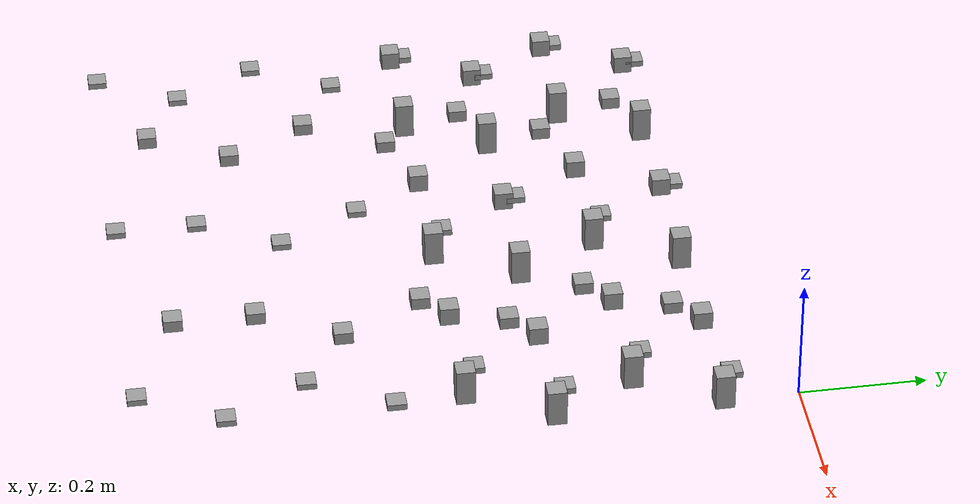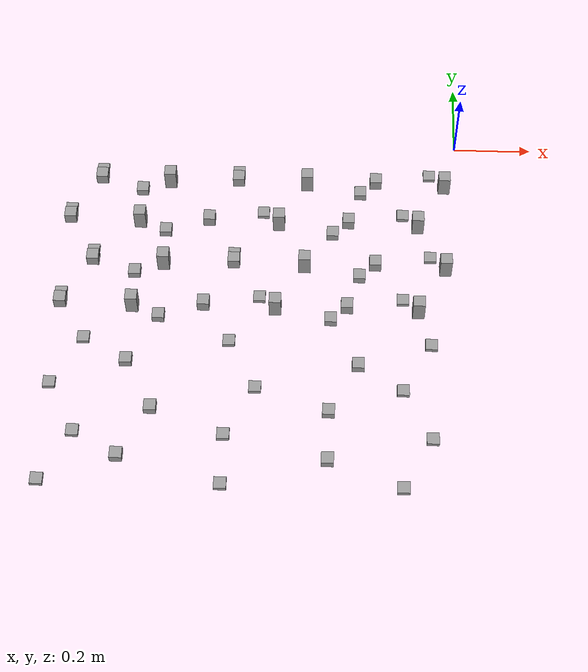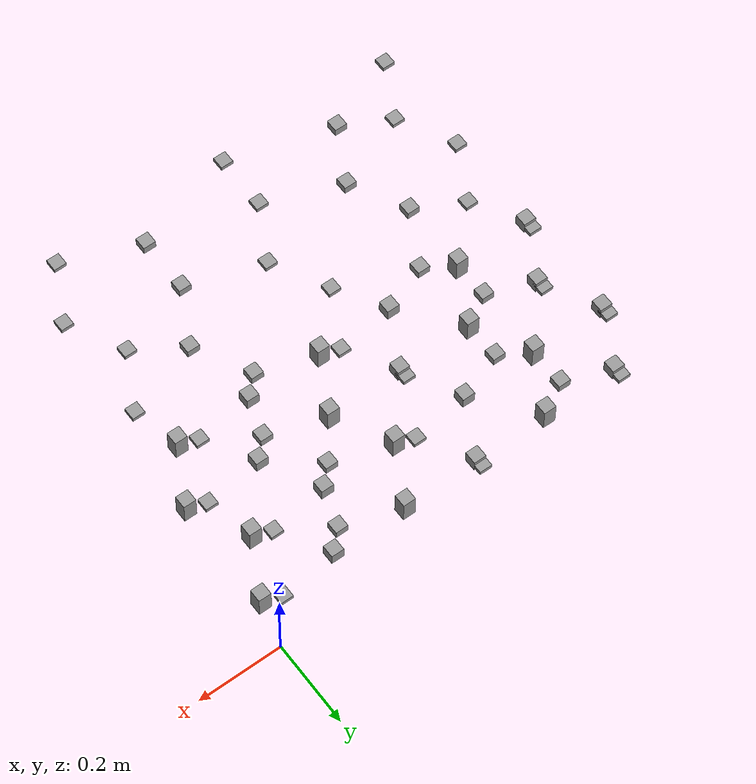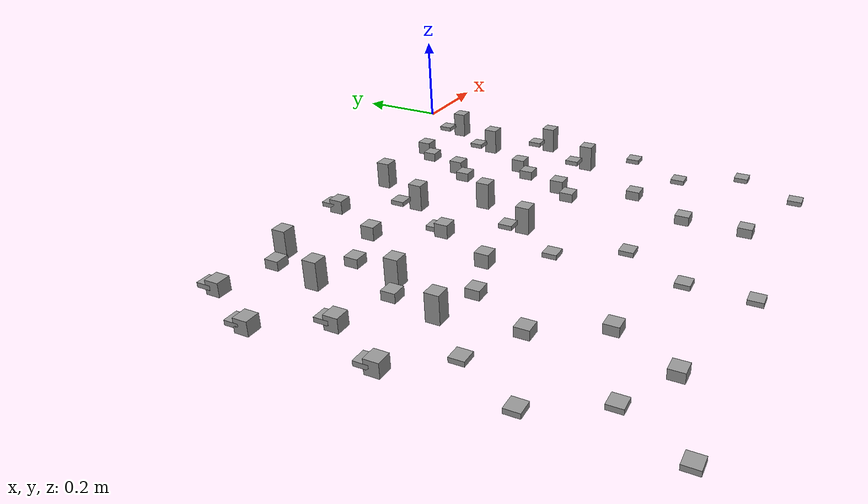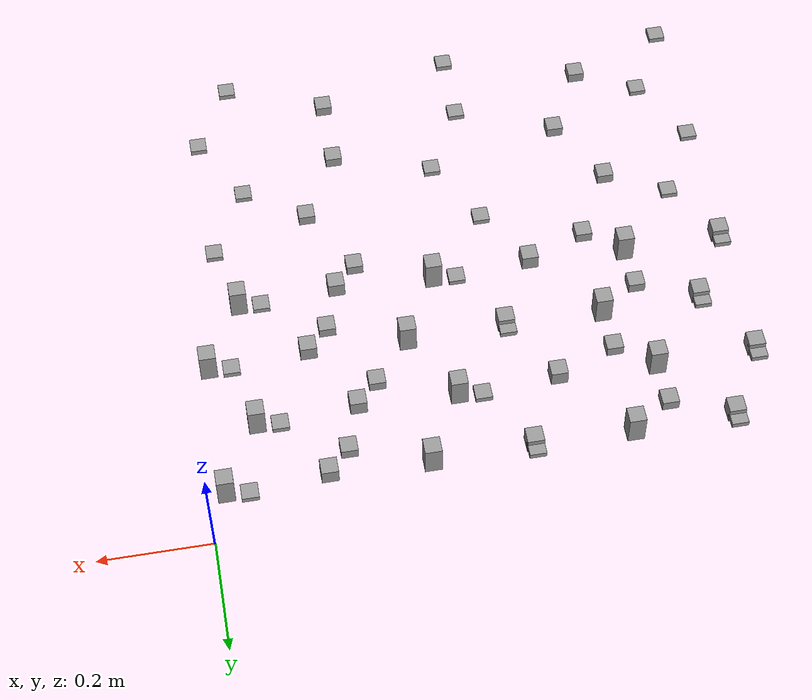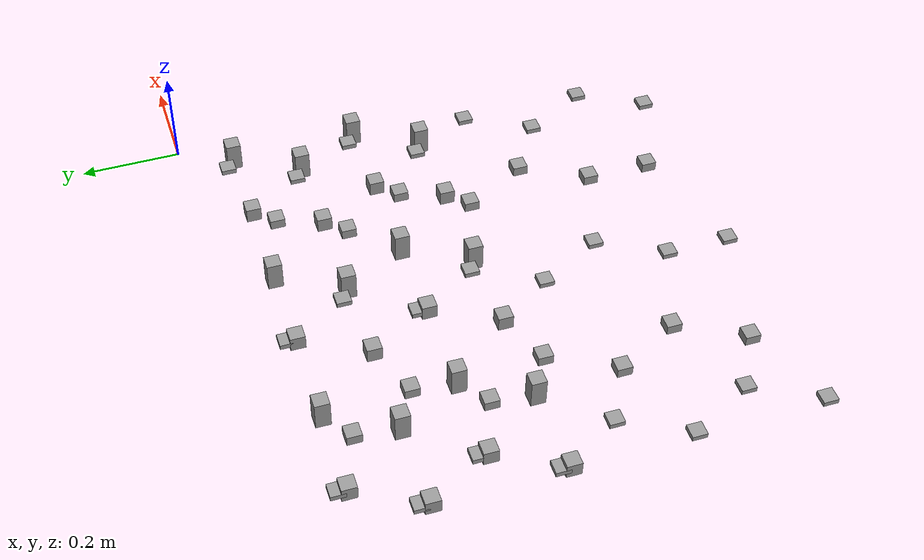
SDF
<sdf version="1.5">
 <world name="default">
  <model name="unit_box_0">
   <pose>-1 -0.5 0 0 0 0</pose>
   <link name="link">
    <inertial>
     <mass>1</mass>
     <inertia><ixx>0</ixx><ixy>0</ixy><ixz>0</ixz><iyy>0</iyy><iyz>0</iyz><izz>0</izz></inertia>
    </inertial>
    <collision name="collision"><geometry><box><size>0.03 0.03 0.03</size></box></geometry></collision>
    <visual name="visual">
     <geometry><box><size>0.03 0.03 0.03</size></box></geometry>
     <material>
      <script><name>Gazebo/Grey</name><uri>file://media/materials/scripts/gazebo.material</uri></script>
     </material>
    </visual>
   </link>
  </model>
  <model name="unit_box_1">
   <pose>-0.93 -0.37 0 0 0 0</pose>
   <link name="link">
    <inertial>
     <mass>1</mass>
     <inertia><ixx>0</ixx><ixy>0</ixy><ixz>0</ixz><iyy>0</iyy><iyz>0</iyz><izz>0</izz></inertia>
    </inertial>
    <collision name="collision"><geometry><box><size>0.03 0.03 0.03</size></box></geometry></collision>
    <visual name="visual">
     <geometry><box><size>0.03 0.03 0.03</size></box></geometry>
     <material>
      <script><name>Gazebo/Grey</name><uri>file://media/materials/scripts/gazebo.material</uri></script>
     </material>
    </visual>
   </link>
  </model>
  <model name="unit_box_2">
   <pose>-1 -0.24 0 0 0 0</pose>
   <link name="link">
    <inertial>
     <mass>1</mass>
     <inertia><ixx>0</ixx><ixy>0</ixy><ixz>0</ixz><iyy>0</iyy><iyz>0</iyz><izz>0</izz></inertia>
    </inertial>
    <collision name="collision"><geometry><box><size>0.03 0.03 0.03</size></box></geometry></collision>
    <visual name="visual">
     <geometry><box><size>0.03 0.03 0.03</size></box></geometry>
     <material>
      <script><name>Gazebo/Grey</name><uri>file://media/materials/scripts/gazebo.material</uri></script>
     </material>
    </visual>
   </link>
  </model>
  <model name="unit_box_3">
   <pose>-0.93 -0.11 0 0 0 0</pose>
   <link name="link">
    <inertial>
     <mass>1</mass>
     <inertia><ixx>0</ixx><ixy>0</ixy><ixz>0</ixz><iyy>0</iyy><iyz>0</iyz><izz>0</izz></inertia>
    </inertial>
    <collision name="collision"><geometry><box><size>0.03 0.03 0.03</size></box></geometry></collision>
    <visual name="visual">
     <geometry><box><size>0.03 0.03 0.03</size></box></geometry>
     <material>
      <script><name>Gazebo/Grey</name><uri>file://media/materials/scripts/gazebo.material</uri></script>
     </material>
    </visual>
   </link>
  </model>
  <model name="unit_box_8">
   <pose>-0.82 -0.5 0 0 0 0</pose>
   <link name="link">
    <inertial>
     <mass>1</mass>
     <inertia><ixx>0</ixx><ixy>0</ixy><ixz>0</ixz><iyy>0</iyy><iyz>0</iyz><izz>0</izz></inertia>
    </inertial>
    <collision name="collision"><geometry><box><size>0.03 0.03 0.06</size></box></geometry></collision>
    <visual name="visual">
     <geometry><box><size>0.03 0.03 0.06</size></box></geometry>
     <material>
      <script><name>Gazebo/Grey</name><uri>file://media/materials/scripts/gazebo.material</uri></script>
     </material>
    </visual>
   </link>
  </model>
  <model name="unit_box_9">
   <pose>-0.75 -0.37 0 0 0 0</pose>
   <link name="link">
    <inertial>
     <mass>1</mass>
     <inertia><ixx>0</ixx><ixy>0</ixy><ixz>0</ixz><iyy>0</iyy><iyz>0</iyz><izz>0</izz></inertia>
    </inertial>
    <collision name="collision"><geometry><box><size>0.03 0.03 0.06</size></box></geometry></collision>
    <visual name="visual">
     <geometry><box><size>0.03 0.03 0.06</size></box></geometry>
     <material>
      <script><name>Gazebo/Grey</name><uri>file://media/materials/scripts/gazebo.material</uri></script>
     </material>
    </visual>
   </link>
  </model>
  <model name="unit_box_10">
   <pose>-0.82 -0.24 0 0 0 0</pose>
   <link name="link">
    <inertial>
     <mass>1</mass>
     <inertia><ixx>0</ixx><ixy>0</ixy><ixz>0</ixz><iyy>0</iyy><iyz>0</iyz><izz>0</izz></inertia>
    </inertial>
    <collision name="collision"><geometry><box><size>0.03 0.03 0.06</size></box></geometry></collision>
    <visual name="visual">
     <geometry><box><size>0.03 0.03 0.06</size></box></geometry>
     <material>
      <script><name>Gazebo/Grey</name><uri>file://media/materials/scripts/gazebo.material</uri></script>
     </material>
    </visual>
   </link>
  </model>
  <model name="unit_box_11">
   <pose>-0.75 -0.11 0 0 0 0</pose>
   <link name="link">
    <inertial>
     <mass>1</mass>
     <inertia><ixx>0</ixx><ixy>0</ixy><ixz>0</ixz><iyy>0</iyy><iyz>0</iyz><izz>0</izz></inertia>
    </inertial>
    <collision name="collision"><geometry><box><size>0.03 0.03 0.06</size></box></geometry></collision>
    <visual name="visual">
     <geometry><box><size>0.03 0.03 0.06</size></box></geometry>
     <material>
      <script><name>Gazebo/Grey</name><uri>file://media/materials/scripts/gazebo.material</uri></script>
     </material>
    </visual>
   </link>
  </model>
  <model name="unit_box_16">
   <pose>-0.64 -0.5 0 0 0 0</pose>
   <link name="link">
    <inertial>
     <mass>1</mass>
     <inertia><ixx>0</ixx><ixy>0</ixy><ixz>0</ixz><iyy>0</iyy><iyz>0</iyz><izz>0</izz></inertia>
    </inertial>
    <collision name="collision"><geometry><box><size>0.03 0.03 0.03</size></box></geometry></collision>
    <visual name="visual">
     <geometry><box><size>0.03 0.03 0.03</size></box></geometry>
     <material>
      <script><name>Gazebo/Grey</name><uri>file://media/materials/scripts/gazebo.material</uri></script>
     </material>
    </visual>
   </link>
  </model>
  <model name="unit_box_17">
   <pose>-0.57 -0.37 0 0 0 0</pose>
   <link name="link">
    <inertial>
     <mass>1</mass>
     <inertia><ixx>0</ixx><ixy>0</ixy><ixz>0</ixz><iyy>0</iyy><iyz>0</iyz><izz>0</izz></inertia>
    </inertial>
    <collision name="collision"><geometry><box><size>0.03 0.03 0.03</size></box></geometry></collision>
    <visual name="visual">
     <geometry><box><size>0.03 0.03 0.03</size></box></geometry>
     <material>
      <script><name>Gazebo/Grey</name><uri>file://media/materials/scripts/gazebo.material</uri></script>
     </material>
    </visual>
   </link>
  </model>
  <model name="unit_box_18">
   <pose>-0.64 -0.24 0 0 0 0</pose>
   <link name="link">
    <inertial>
     <mass>1</mass>
     <inertia><ixx>0</ixx><ixy>0</ixy><ixz>0</ixz><iyy>0</iyy><iyz>0</iyz><izz>0</izz></inertia>
    </inertial>
    <collision name="collision"><geometry><box><size>0.03 0.03 0.03</size></box></geometry></collision>
    <visual name="visual">
     <geometry><box><size>0.03 0.03 0.03</size></box></geometry>
     <material>
      <script><name>Gazebo/Grey</name><uri>file://media/materials/scripts/gazebo.material</uri></script>
     </material>
    </visual>
   </link>
  </model>
  <model name="unit_box_19">
   <pose>-0.57 -0.11 0 0 0 0</pose>
   <link name="link">
    <inertial>
     <mass>1</mass>
     <inertia><ixx>0</ixx><ixy>0</ixy><ixz>0</ixz><iyy>0</iyy><iyz>0</iyz><izz>0</izz></inertia>
    </inertial>
    <collision name="collision"><geometry><box><size>0.03 0.03 0.03</size></box></geometry></collision>
    <visual name="visual">
     <geometry><box><size>0.03 0.03 0.03</size></box></geometry>
     <material>
      <script><name>Gazebo/Grey</name><uri>file://media/materials/scripts/gazebo.material</uri></script>
     </material>
    </visual>
   </link>
  </model>
  <model name="unit_box_24">
   <pose>-0.46 -0.5 0 0 0 0</pose>
   <link name="link">
    <inertial>
     <mass>1</mass>
     <inertia><ixx>0</ixx><ixy>0</ixy><ixz>0</ixz><iyy>0</iyy><iyz>0</iyz><izz>0</izz></inertia>
    </inertial>
    <collision name="collision"><geometry><box><size>0.03 0.03 0.06</size></box></geometry></collision>
    <visual name="visual">
     <geometry><box><size>0.03 0.03 0.06</size></box></geometry>
     <material>
      <script><name>Gazebo/Grey</name><uri>file://media/materials/scripts/gazebo.material</uri></script>
     </material>
    </visual>
   </link>
  </model>
  <model name="unit_box_25">
   <pose>-0.39 -0.37 0 0 0 0</pose>
   <link name="link">
    <inertial>
     <mass>1</mass>
     <inertia><ixx>0</ixx><ixy>0</ixy><ixz>0</ixz><iyy>0</iyy><iyz>0</iyz><izz>0</izz></inertia>
    </inertial>
    <collision name="collision"><geometry><box><size>0.03 0.03 0.06</size></box></geometry></collision>
    <visual name="visual">
     <geometry><box><size>0.03 0.03 0.06</size></box></geometry>
     <material>
      <script><name>Gazebo/Grey</name><uri>file://media/materials/scripts/gazebo.material</uri></script>
     </material>
    </visual>
   </link>
  </model>
  <model name="unit_box_26">
   <pose>-0.46 -0.24 0 0 0 0</pose>
   <link name="link">
    <inertial>
     <mass>1</mass>
     <inertia><ixx>0</ixx><ixy>0</ixy><ixz>0</ixz><iyy>0</iyy><iyz>0</iyz><izz>0</izz></inertia>
    </inertial>
    <collision name="collision"><geometry><box><size>0.03 0.03 0.06</size></box></geometry></collision>
    <visual name="visual">
     <geometry><box><size>0.03 0.03 0.06</size></box></geometry>
     <material>
      <script><name>Gazebo/Grey</name><uri>file://media/materials/scripts/gazebo.material</uri></script>
     </material>
    </visual>
   </link>
  </model>
  <model name="unit_box_27">
   <pose>-0.39 -0.11 0 0 0 0</pose>
   <link name="link">
    <inertial>
     <mass>1</mass>
     <inertia><ixx>0</ixx><ixy>0</ixy><ixz>0</ixz><iyy>0</iyy><iyz>0</iyz><izz>0</izz></inertia>
    </inertial>
    <collision name="collision"><geometry><box><size>0.03 0.03 0.06</size></box></geometry></collision>
    <visual name="visual">
     <geometry><box><size>0.03 0.03 0.06</size></box></geometry>
     <material>
      <script><name>Gazebo/Grey</name><uri>file://media/materials/scripts/gazebo.material</uri></script>
     </material>
    </visual>
   </link>
  </model>
  <model name="unit_box_32">
   <pose>-0.28 -0.5 0 0 0 0</pose>
   <link name="link">
    <inertial>
     <mass>1</mass>
     <inertia><ixx>0</ixx><ixy>0</ixy><ixz>0</ixz><iyy>0</iyy><iyz>0</iyz><izz>0</izz></inertia>
    </inertial>
    <collision name="collision"><geometry><box><size>0.03 0.03 0.03</size></box></geometry></collision>
    <visual name="visual">
     <geometry><box><size>0.03 0.03 0.03</size></box></geometry>
     <material>
      <script><name>Gazebo/Grey</name><uri>file://media/materials/scripts/gazebo.material</uri></script>
     </material>
    </visual>
   </link>
  </model>
  <model name="unit_box_33">
   <pose>-0.21 -0.37 0 0 0 0</pose>
   <link name="link">
    <inertial>
     <mass>1</mass>
     <inertia><ixx>0</ixx><ixy>0</ixy><ixz>0</ixz><iyy>0</iyy><iyz>0</iyz><izz>0</izz></inertia>
    </inertial>
    <collision name="collision"><geometry><box><size>0.03 0.03 0.03</size></box></geometry></collision>
    <visual name="visual">
     <geometry><box><size>0.03 0.03 0.03</size></box></geometry>
     <material>
      <script><name>Gazebo/Grey</name><uri>file://media/materials/scripts/gazebo.material</uri></script>
     </material>
    </visual>
   </link>
  </model>
  <model name="unit_box_34">
   <pose>-0.28 -0.24 0 0 0 0</pose>
   <link name="link">
    <inertial>
     <mass>1</mass>
     <inertia><ixx>0</ixx><ixy>0</ixy><ixz>0</ixz><iyy>0</iyy><iyz>0</iyz><izz>0</izz></inertia>
    </inertial>
    <collision name="collision"><geometry><box><size>0.03 0.03 0.03</size></box></geometry></collision>
    <visual name="visual">
     <geometry><box><size>0.03 0.03 0.03</size></box></geometry>
     <material>
      <script><name>Gazebo/Grey</name><uri>file://media/materials/scripts/gazebo.material</uri></script>
     </material>
    </visual>
   </link>
  </model>
  <model name="unit_box_35">
   <pose>-0.21 -0.11 0 0 0 0</pose>
   <link name="link">
    <inertial>
     <mass>1</mass>
     <inertia><ixx>0</ixx><ixy>0</ixy><ixz>0</ixz><iyy>0</iyy><iyz>0</iyz><izz>0</izz></inertia>
    </inertial>
    <collision name="collision"><geometry><box><size>0.03 0.03 0.03</size></box></geometry></collision>
    <visual name="visual">
     <geometry><box><size>0.03 0.03 0.03</size></box></geometry>
     <material>
      <script><name>Gazebo/Grey</name><uri>file://media/materials/scripts/gazebo.material</uri></script>
     </material>
    </visual>
   </link>
  </model>
  <model name="unit_box_40">
   <pose>-0.0999999999999998 -0.5 0 0 0 0</pose>
   <link name="link">
    <inertial>
     <mass>1</mass>
     <inertia><ixx>0</ixx><ixy>0</ixy><ixz>0</ixz><iyy>0</iyy><iyz>0</iyz><izz>0</izz></inertia>
    </inertial>
    <collision name="collision"><geometry><box><size>0.03 0.03 0.06</size></box></geometry></collision>
    <visual name="visual">
     <geometry><box><size>0.03 0.03 0.06</size></box></geometry>
     <material>
      <script><name>Gazebo/Grey</name><uri>file://media/materials/scripts/gazebo.material</uri></script>
     </material>
    </visual>
   </link>
  </model>
  <model name="unit_box_41">
   <pose>-0.0299999999999998 -0.37 0 0 0 0</pose>
   <link name="link">
    <inertial>
     <mass>1</mass>
     <inertia><ixx>0</ixx><ixy>0</ixy><ixz>0</ixz><iyy>0</iyy><iyz>0</iyz><izz>0</izz></inertia>
    </inertial>
    <collision name="collision"><geometry><box><size>0.03 0.03 0.06</size></box></geometry></collision>
    <visual name="visual">
     <geometry><box><size>0.03 0.03 0.06</size></box></geometry>
     <material>
      <script><name>Gazebo/Grey</name><uri>file://media/materials/scripts/gazebo.material</uri></script>
     </material>
    </visual>
   </link>
  </model>
  <model name="unit_box_42">
   <pose>-0.0999999999999998 -0.24 0 0 0 0</pose>
   <link name="link">
    <inertial>
     <mass>1</mass>
     <inertia><ixx>0</ixx><ixy>0</ixy><ixz>0</ixz><iyy>0</iyy><iyz>0</iyz><izz>0</izz></inertia>
    </inertial>
    <collision name="collision"><geometry><box><size>0.03 0.03 0.06</size></box></geometry></collision>
    <visual name="visual">
     <geometry><box><size>0.03 0.03 0.06</size></box></geometry>
     <material>
      <script><name>Gazebo/Grey</name><uri>file://media/materials/scripts/gazebo.material</uri></script>
     </material>
    </visual>
   </link>
  </model>
  <model name="unit_box_43">
   <pose>-0.0299999999999998 -0.11 0 0 0 0</pose>
   <link name="link">
    <inertial>
     <mass>1</mass>
     <inertia><ixx>0</ixx><ixy>0</ixy><ixz>0</ixz><iyy>0</iyy><iyz>0</iyz><izz>0</izz></inertia>
    </inertial>
    <collision name="collision"><geometry><box><size>0.03 0.03 0.06</size></box></geometry></collision>
    <visual name="visual">
     <geometry><box><size>0.03 0.03 0.06</size></box></geometry>
     <material>
      <script><name>Gazebo/Grey</name><uri>file://media/materials/scripts/gazebo.material</uri></script>
     </material>
    </visual>
   </link>
  </model>
  <model name="unit_box_0">
   <pose>-1 -1 0 0 0 0</pose>
   <link name="link">
    <inertial>
     <mass>1</mass>
     <inertia><ixx>0</ixx><ixy>0</ixy><ixz>0</ixz><iyy>0</iyy><iyz>0</iyz><izz>0</izz></inertia>
    </inertial>
    <collision name="collision"><geometry><box><size>0.03 0.03 0.01</size></box></geometry></collision>
    <visual name="visual">
     <geometry><box><size>0.03 0.03 0.01</size></box></geometry>
     <material>
      <script><name>Gazebo/Grey</name><uri>file://media/materials/scripts/gazebo.material</uri></script>
     </material>
    </visual>
   </link>
  </model>
  <model name="unit_box_1">
   <pose>-0.93 -0.87 0 0 0 0</pose>
   <link name="link">
    <inertial>
     <mass>1</mass>
     <inertia><ixx>0</ixx><ixy>0</ixy><ixz>0</ixz><iyy>0</iyy><iyz>0</iyz><izz>0</izz></inertia>
    </inertial>
    <collision name="collision"><geometry><box><size>0.03 0.03 0.01</size></box></geometry></collision>
    <visual name="visual">
     <geometry><box><size>0.03 0.03 0.01</size></box></geometry>
     <material>
      <script><name>Gazebo/Grey</name><uri>file://media/materials/scripts/gazebo.material</uri></script>
     </material>
    </visual>
   </link>
  </model>
  <model name="unit_box_2">
   <pose>-1 -0.74 0 0 0 0</pose>
   <link name="link">
    <inertial>
     <mass>1</mass>
     <inertia><ixx>0</ixx><ixy>0</ixy><ixz>0</ixz><iyy>0</iyy><iyz>0</iyz><izz>0</izz></inertia>
    </inertial>
    <collision name="collision"><geometry><box><size>0.03 0.03 0.01</size></box></geometry></collision>
    <visual name="visual">
     <geometry><box><size>0.03 0.03 0.01</size></box></geometry>
     <material>
      <script><name>Gazebo/Grey</name><uri>file://media/materials/scripts/gazebo.material</uri></script>
     </material>
    </visual>
   </link>
  </model>
  <model name="unit_box_3">
   <pose>-0.93 -0.61 0 0 0 0</pose>
   <link name="link">
    <inertial>
     <mass>1</mass>
     <inertia><ixx>0</ixx><ixy>0</ixy><ixz>0</ixz><iyy>0</iyy><iyz>0</iyz><izz>0</izz></inertia>
    </inertial>
    <collision name="collision"><geometry><box><size>0.03 0.03 0.01</size></box></geometry></collision>
    <visual name="visual">
     <geometry><box><size>0.03 0.03 0.01</size></box></geometry>
     <material>
      <script><name>Gazebo/Grey</name><uri>file://media/materials/scripts/gazebo.material</uri></script>
     </material>
    </visual>
   </link>
  </model>
  <model name="unit_box_4">
   <pose>-1 -0.48 0 0 0 0</pose>
   <link name="link">
    <inertial>
     <mass>1</mass>
     <inertia><ixx>0</ixx><ixy>0</ixy><ixz>0</ixz><iyy>0</iyy><iyz>0</iyz><izz>0</izz></inertia>
    </inertial>
    <collision name="collision"><geometry><box><size>0.03 0.03 0.01</size></box></geometry></collision>
    <visual name="visual">
     <geometry><box><size>0.03 0.03 0.01</size></box></geometry>
     <material>
      <script><name>Gazebo/Grey</name><uri>file://media/materials/scripts/gazebo.material</uri></script>
     </material>
    </visual>
   </link>
  </model>
  <model name="unit_box_5">
   <pose>-0.93 -0.35 0 0 0 0</pose>
   <link name="link">
    <inertial>
     <mass>1</mass>
     <inertia><ixx>0</ixx><ixy>0</ixy><ixz>0</ixz><iyy>0</iyy><iyz>0</iyz><izz>0</izz></inertia>
    </inertial>
    <collision name="collision"><geometry><box><size>0.03 0.03 0.01</size></box></geometry></collision>
    <visual name="visual">
     <geometry><box><size>0.03 0.03 0.01</size></box></geometry>
     <material>
      <script><name>Gazebo/Grey</name><uri>file://media/materials/scripts/gazebo.material</uri></script>
     </material>
    </visual>
   </link>
  </model>
  <model name="unit_box_6">
   <pose>-1 -0.22 0 0 0 0</pose>
   <link name="link">
    <inertial>
     <mass>1</mass>
     <inertia><ixx>0</ixx><ixy>0</ixy><ixz>0</ixz><iyy>0</iyy><iyz>0</iyz><izz>0</izz></inertia>
    </inertial>
    <collision name="collision"><geometry><box><size>0.03 0.03 0.01</size></box></geometry></collision>
    <visual name="visual">
     <geometry><box><size>0.03 0.03 0.01</size></box></geometry>
     <material>
      <script><name>Gazebo/Grey</name><uri>file://media/materials/scripts/gazebo.material</uri></script>
     </material>
    </visual>
   </link>
  </model>
  <model name="unit_box_7">
   <pose>-0.93 -0.0899999999999999 0 0 0 0</pose>
   <link name="link">
    <inertial>
     <mass>1</mass>
     <inertia><ixx>0</ixx><ixy>0</ixy><ixz>0</ixz><iyy>0</iyy><iyz>0</iyz><izz>0</izz></inertia>
    </inertial>
    <collision name="collision"><geometry><box><size>0.03 0.03 0.01</size></box></geometry></collision>
    <visual name="visual">
     <geometry><box><size>0.03 0.03 0.01</size></box></geometry>
     <material>
      <script><name>Gazebo/Grey</name><uri>file://media/materials/scripts/gazebo.material</uri></script>
     </material>
    </visual>
   </link>
  </model>
  <model name="unit_box_16">
   <pose>-0.82 -0.93 0 0 0 0</pose>
   <link name="link">
    <inertial>
     <mass>1</mass>
     <inertia><ixx>0</ixx><ixy>0</ixy><ixz>0</ixz><iyy>0</iyy><iyz>0</iyz><izz>0</izz></inertia>
    </inertial>
    <collision name="collision"><geometry><box><size>0.03 0.03 0.02</size></box></geometry></collision>
    <visual name="visual">
     <geometry><box><size>0.03 0.03 0.02</size></box></geometry>
     <material>
      <script><name>Gazebo/Grey</name><uri>file://media/materials/scripts/gazebo.material</uri></script>
     </material>
    </visual>
   </link>
  </model>
  <model name="unit_box_17">
   <pose>-0.75 -0.8 0 0 0 0</pose>
   <link name="link">
    <inertial>
     <mass>1</mass>
     <inertia><ixx>0</ixx><ixy>0</ixy><ixz>0</ixz><iyy>0</iyy><iyz>0</iyz><izz>0</izz></inertia>
    </inertial>
    <collision name="collision"><geometry><box><size>0.03 0.03 0.02</size></box></geometry></collision>
    <visual name="visual">
     <geometry><box><size>0.03 0.03 0.02</size></box></geometry>
     <material>
      <script><name>Gazebo/Grey</name><uri>file://media/materials/scripts/gazebo.material</uri></script>
     </material>
    </visual>
   </link>
  </model>
  <model name="unit_box_18">
   <pose>-0.82 -0.67 0 0 0 0</pose>
   <link name="link">
    <inertial>
     <mass>1</mass>
     <inertia><ixx>0</ixx><ixy>0</ixy><ixz>0</ixz><iyy>0</iyy><iyz>0</iyz><izz>0</izz></inertia>
    </inertial>
    <collision name="collision"><geometry><box><size>0.03 0.03 0.02</size></box></geometry></collision>
    <visual name="visual">
     <geometry><box><size>0.03 0.03 0.02</size></box></geometry>
     <material>
      <script><name>Gazebo/Grey</name><uri>file://media/materials/scripts/gazebo.material</uri></script>
     </material>
    </visual>
   </link>
  </model>
  <model name="unit_box_19">
   <pose>-0.75 -0.54 0 0 0 0</pose>
   <link name="link">
    <inertial>
     <mass>1</mass>
     <inertia><ixx>0</ixx><ixy>0</ixy><ixz>0</ixz><iyy>0</iyy><iyz>0</iyz><izz>0</izz></inertia>
    </inertial>
    <collision name="collision"><geometry><box><size>0.03 0.03 0.02</size></box></geometry></collision>
    <visual name="visual">
     <geometry><box><size>0.03 0.03 0.02</size></box></geometry>
     <material>
      <script><name>Gazebo/Grey</name><uri>file://media/materials/scripts/gazebo.material</uri></script>
     </material>
    </visual>
   </link>
  </model>
  <model name="unit_box_20">
   <pose>-0.82 -0.41 0 0 0 0</pose>
   <link name="link">
    <inertial>
     <mass>1</mass>
     <inertia><ixx>0</ixx><ixy>0</ixy><ixz>0</ixz><iyy>0</iyy><iyz>0</iyz><izz>0</izz></inertia>
    </inertial>
    <collision name="collision"><geometry><box><size>0.03 0.03 0.02</size></box></geometry></collision>
    <visual name="visual">
     <geometry><box><size>0.03 0.03 0.02</size></box></geometry>
     <material>
      <script><name>Gazebo/Grey</name><uri>file://media/materials/scripts/gazebo.material</uri></script>
     </material>
    </visual>
   </link>
  </model>
  <model name="unit_box_21">
   <pose>-0.75 -0.28 0 0 0 0</pose>
   <link name="link">
    <inertial>
     <mass>1</mass>
     <inertia><ixx>0</ixx><ixy>0</ixy><ixz>0</ixz><iyy>0</iyy><iyz>0</iyz><izz>0</izz></inertia>
    </inertial>
    <collision name="collision"><geometry><box><size>0.03 0.03 0.02</size></box></geometry></collision>
    <visual name="visual">
     <geometry><box><size>0.03 0.03 0.02</size></box></geometry>
     <material>
      <script><name>Gazebo/Grey</name><uri>file://media/materials/scripts/gazebo.material</uri></script>
     </material>
    </visual>
   </link>
  </model>
  <model name="unit_box_22">
   <pose>-0.82 -0.15 0 0 0 0</pose>
   <link name="link">
    <inertial>
     <mass>1</mass>
     <inertia><ixx>0</ixx><ixy>0</ixy><ixz>0</ixz><iyy>0</iyy><iyz>0</iyz><izz>0</izz></inertia>
    </inertial>
    <collision name="collision"><geometry><box><size>0.03 0.03 0.02</size></box></geometry></collision>
    <visual name="visual">
     <geometry><box><size>0.03 0.03 0.02</size></box></geometry>
     <material>
      <script><name>Gazebo/Grey</name><uri>file://media/materials/scripts/gazebo.material</uri></script>
     </material>
    </visual>
   </link>
  </model>
  <model name="unit_box_31">
   <pose>-0.57 -1 0 0 0 0</pose>
   <link name="link">
    <inertial>
     <mass>1</mass>
     <inertia><ixx>0</ixx><ixy>0</ixy><ixz>0</ixz><iyy>0</iyy><iyz>0</iyz><izz>0</izz></inertia>
    </inertial>
    <collision name="collision"><geometry><box><size>0.03 0.03 0.01</size></box></geometry></collision>
    <visual name="visual">
     <geometry><box><size>0.03 0.03 0.01</size></box></geometry>
     <material>
      <script><name>Gazebo/Grey</name><uri>file://media/materials/scripts/gazebo.material</uri></script>
     </material>
    </visual>
   </link>
  </model>
  <model name="unit_box_32">
   <pose>-0.57 -0.87 0 0 0 0</pose>
   <link name="link">
    <inertial>
     <mass>1</mass>
     <inertia><ixx>0</ixx><ixy>0</ixy><ixz>0</ixz><iyy>0</iyy><iyz>0</iyz><izz>0</izz></inertia>
    </inertial>
    <collision name="collision"><geometry><box><size>0.03 0.03 0.01</size></box></geometry></collision>
    <visual name="visual">
     <geometry><box><size>0.03 0.03 0.01</size></box></geometry>
     <material>
      <script><name>Gazebo/Grey</name><uri>file://media/materials/scripts/gazebo.material</uri></script>
     </material>
    </visual>
   </link>
  </model>
  <model name="unit_box_33">
   <pose>-0.5 -0.74 0 0 0 0</pose>
   <link name="link">
    <inertial>
     <mass>1</mass>
     <inertia><ixx>0</ixx><ixy>0</ixy><ixz>0</ixz><iyy>0</iyy><iyz>0</iyz><izz>0</izz></inertia>
    </inertial>
    <collision name="collision"><geometry><box><size>0.03 0.03 0.01</size></box></geometry></collision>
    <visual name="visual">
     <geometry><box><size>0.03 0.03 0.01</size></box></geometry>
     <material>
      <script><name>Gazebo/Grey</name><uri>file://media/materials/scripts/gazebo.material</uri></script>
     </material>
    </visual>
   </link>
  </model>
  <model name="unit_box_34">
   <pose>-0.57 -0.61 0 0 0 0</pose>
   <link name="link">
    <inertial>
     <mass>1</mass>
     <inertia><ixx>0</ixx><ixy>0</ixy><ixz>0</ixz><iyy>0</iyy><iyz>0</iyz><izz>0</izz></inertia>
    </inertial>
    <collision name="collision"><geometry><box><size>0.03 0.03 0.01</size></box></geometry></collision>
    <visual name="visual">
     <geometry><box><size>0.03 0.03 0.01</size></box></geometry>
     <material>
      <script><name>Gazebo/Grey</name><uri>file://media/materials/scripts/gazebo.material</uri></script>
     </material>
    </visual>
   </link>
  </model>
  <model name="unit_box_35">
   <pose>-0.5 -0.48 0 0 0 0</pose>
   <link name="link">
    <inertial>
     <mass>1</mass>
     <inertia><ixx>0</ixx><ixy>0</ixy><ixz>0</ixz><iyy>0</iyy><iyz>0</iyz><izz>0</izz></inertia>
    </inertial>
    <collision name="collision"><geometry><box><size>0.03 0.03 0.01</size></box></geometry></collision>
    <visual name="visual">
     <geometry><box><size>0.03 0.03 0.01</size></box></geometry>
     <material>
      <script><name>Gazebo/Grey</name><uri>file://media/materials/scripts/gazebo.material</uri></script>
     </material>
    </visual>
   </link>
  </model>
  <model name="unit_box_36">
   <pose>-0.57 -0.35 0 0 0 0</pose>
   <link name="link">
    <inertial>
     <mass>1</mass>
     <inertia><ixx>0</ixx><ixy>0</ixy><ixz>0</ixz><iyy>0</iyy><iyz>0</iyz><izz>0</izz></inertia>
    </inertial>
    <collision name="collision"><geometry><box><size>0.03 0.03 0.01</size></box></geometry></collision>
    <visual name="visual">
     <geometry><box><size>0.03 0.03 0.01</size></box></geometry>
     <material>
      <script><name>Gazebo/Grey</name><uri>file://media/materials/scripts/gazebo.material</uri></script>
     </material>
    </visual>
   </link>
  </model>
  <model name="unit_box_37">
   <pose>-0.5 -0.22 0 0 0 0</pose>
   <link name="link">
    <inertial>
     <mass>1</mass>
     <inertia><ixx>0</ixx><ixy>0</ixy><ixz>0</ixz><iyy>0</iyy><iyz>0</iyz><izz>0</izz></inertia>
    </inertial>
    <collision name="collision"><geometry><box><size>0.03 0.03 0.01</size></box></geometry></collision>
    <visual name="visual">
     <geometry><box><size>0.03 0.03 0.01</size></box></geometry>
     <material>
      <script><name>Gazebo/Grey</name><uri>file://media/materials/scripts/gazebo.material</uri></script>
     </material>
    </visual>
   </link>
  </model>
  <model name="unit_box_38">
   <pose>-0.57 -0.0899999999999999 0 0 0 0</pose>
   <link name="link">
    <inertial>
     <mass>1</mass>
     <inertia><ixx>0</ixx><ixy>0</ixy><ixz>0</ixz><iyy>0</iyy><iyz>0</iyz><izz>0</izz></inertia>
    </inertial>
    <collision name="collision"><geometry><box><size>0.03 0.03 0.01</size></box></geometry></collision>
    <visual name="visual">
     <geometry><box><size>0.03 0.03 0.01</size></box></geometry>
     <material>
      <script><name>Gazebo/Grey</name><uri>file://media/materials/scripts/gazebo.material</uri></script>
     </material>
    </visual>
   </link>
  </model>
  <model name="unit_box_47">
   <pose>-0.32 -0.93 0 0 0 0</pose>
   <link name="link">
    <inertial>
     <mass>1</mass>
     <inertia><ixx>0</ixx><ixy>0</ixy><ixz>0</ixz><iyy>0</iyy><iyz>0</iyz><izz>0</izz></inertia>
    </inertial>
    <collision name="collision"><geometry><box><size>0.03 0.03 0.02</size></box></geometry></collision>
    <visual name="visual">
     <geometry><box><size>0.03 0.03 0.02</size></box></geometry>
     <material>
      <script><name>Gazebo/Grey</name><uri>file://media/materials/scripts/gazebo.material</uri></script>
     </material>
    </visual>
   </link>
  </model>
  <model name="unit_box_48">
   <pose>-0.32 -0.8 0 0 0 0</pose>
   <link name="link">
    <inertial>
     <mass>1</mass>
     <inertia><ixx>0</ixx><ixy>0</ixy><ixz>0</ixz><iyy>0</iyy><iyz>0</iyz><izz>0</izz></inertia>
    </inertial>
    <collision name="collision"><geometry><box><size>0.03 0.03 0.02</size></box></geometry></collision>
    <visual name="visual">
     <geometry><box><size>0.03 0.03 0.02</size></box></geometry>
     <material>
      <script><name>Gazebo/Grey</name><uri>file://media/materials/scripts/gazebo.material</uri></script>
     </material>
    </visual>
   </link>
  </model>
  <model name="unit_box_49">
   <pose>-0.25 -0.67 0 0 0 0</pose>
   <link name="link">
    <inertial>
     <mass>1</mass>
     <inertia><ixx>0</ixx><ixy>0</ixy><ixz>0</ixz><iyy>0</iyy><iyz>0</iyz><izz>0</izz></inertia>
    </inertial>
    <collision name="collision"><geometry><box><size>0.03 0.03 0.02</size></box></geometry></collision>
    <visual name="visual">
     <geometry><box><size>0.03 0.03 0.02</size></box></geometry>
     <material>
      <script><name>Gazebo/Grey</name><uri>file://media/materials/scripts/gazebo.material</uri></script>
     </material>
    </visual>
   </link>
  </model>
  <model name="unit_box_50">
   <pose>-0.32 -0.54 0 0 0 0</pose>
   <link name="link">
    <inertial>
     <mass>1</mass>
     <inertia><ixx>0</ixx><ixy>0</ixy><ixz>0</ixz><iyy>0</iyy><iyz>0</iyz><izz>0</izz></inertia>
    </inertial>
    <collision name="collision"><geometry><box><size>0.03 0.03 0.02</size></box></geometry></collision>
    <visual name="visual">
     <geometry><box><size>0.03 0.03 0.02</size></box></geometry>
     <material>
      <script><name>Gazebo/Grey</name><uri>file://media/materials/scripts/gazebo.material</uri></script>
     </material>
    </visual>
   </link>
  </model>
  <model name="unit_box_51">
   <pose>-0.25 -0.41 0 0 0 0</pose>
   <link name="link">
    <inertial>
     <mass>1</mass>
     <inertia><ixx>0</ixx><ixy>0</ixy><ixz>0</ixz><iyy>0</iyy><iyz>0</iyz><izz>0</izz></inertia>
    </inertial>
    <collision name="collision"><geometry><box><size>0.03 0.03 0.02</size></box></geometry></collision>
    <visual name="visual">
     <geometry><box><size>0.03 0.03 0.02</size></box></geometry>
     <material>
      <script><name>Gazebo/Grey</name><uri>file://media/materials/scripts/gazebo.material</uri></script>
     </material>
    </visual>
   </link>
  </model>
  <model name="unit_box_52">
   <pose>-0.32 -0.28 0 0 0 0</pose>
   <link name="link">
    <inertial>
     <mass>1</mass>
     <inertia><ixx>0</ixx><ixy>0</ixy><ixz>0</ixz><iyy>0</iyy><iyz>0</iyz><izz>0</izz></inertia>
    </inertial>
    <collision name="collision"><geometry><box><size>0.03 0.03 0.02</size></box></geometry></collision>
    <visual name="visual">
     <geometry><box><size>0.03 0.03 0.02</size></box></geometry>
     <material>
      <script><name>Gazebo/Grey</name><uri>file://media/materials/scripts/gazebo.material</uri></script>
     </material>
    </visual>
   </link>
  </model>
  <model name="unit_box_53">
   <pose>-0.25 -0.15 0 0 0 0</pose>
   <link name="link">
    <inertial>
     <mass>1</mass>
     <inertia><ixx>0</ixx><ixy>0</ixy><ixz>0</ixz><iyy>0</iyy><iyz>0</iyz><izz>0</izz></inertia>
    </inertial>
    <collision name="collision"><geometry><box><size>0.03 0.03 0.02</size></box></geometry></collision>
    <visual name="visual">
     <geometry><box><size>0.03 0.03 0.02</size></box></geometry>
     <material>
      <script><name>Gazebo/Grey</name><uri>file://media/materials/scripts/gazebo.material</uri></script>
     </material>
    </visual>
   </link>
  </model>
  <model name="unit_box_62">
   <pose>-0.14 -1 0 0 0 0</pose>
   <link name="link">
    <inertial>
     <mass>1</mass>
     <inertia><ixx>0</ixx><ixy>0</ixy><ixz>0</ixz><iyy>0</iyy><iyz>0</iyz><izz>0</izz></inertia>
    </inertial>
    <collision name="collision"><geometry><box><size>0.03 0.03 0.01</size></box></geometry></collision>
    <visual name="visual">
     <geometry><box><size>0.03 0.03 0.01</size></box></geometry>
     <material>
      <script><name>Gazebo/Grey</name><uri>file://media/materials/scripts/gazebo.material</uri></script>
     </material>
    </visual>
   </link>
  </model>
  <model name="unit_box_63">
   <pose>-0.0699999999999999 -0.87 0 0 0 0</pose>
   <link name="link">
    <inertial>
     <mass>1</mass>
     <inertia><ixx>0</ixx><ixy>0</ixy><ixz>0</ixz><iyy>0</iyy><iyz>0</iyz><izz>0</izz></inertia>
    </inertial>
    <collision name="collision"><geometry><box><size>0.03 0.03 0.01</size></box></geometry></collision>
    <visual name="visual">
     <geometry><box><size>0.03 0.03 0.01</size></box></geometry>
     <material>
      <script><name>Gazebo/Grey</name><uri>file://media/materials/scripts/gazebo.material</uri></script>
     </material>
    </visual>
   </link>
  </model>
  <model name="unit_box_64">
   <pose>-0.14 -0.74 0 0 0 0</pose>
   <link name="link">
    <inertial>
     <mass>1</mass>
     <inertia><ixx>0</ixx><ixy>0</ixy><ixz>0</ixz><iyy>0</iyy><iyz>0</iyz><izz>0</izz></inertia>
    </inertial>
    <collision name="collision"><geometry><box><size>0.03 0.03 0.01</size></box></geometry></collision>
    <visual name="visual">
     <geometry><box><size>0.03 0.03 0.01</size></box></geometry>
     <material>
      <script><name>Gazebo/Grey</name><uri>file://media/materials/scripts/gazebo.material</uri></script>
     </material>
    </visual>
   </link>
  </model>
  <model name="unit_box_65">
   <pose>-0.0699999999999999 -0.61 0 0 0 0</pose>
   <link name="link">
    <inertial>
     <mass>1</mass>
     <inertia><ixx>0</ixx><ixy>0</ixy><ixz>0</ixz><iyy>0</iyy><iyz>0</iyz><izz>0</izz></inertia>
    </inertial>
    <collision name="collision"><geometry><box><size>0.03 0.03 0.01</size></box></geometry></collision>
    <visual name="visual">
     <geometry><box><size>0.03 0.03 0.01</size></box></geometry>
     <material>
      <script><name>Gazebo/Grey</name><uri>file://media/materials/scripts/gazebo.material</uri></script>
     </material>
    </visual>
   </link>
  </model>
  <model name="unit_box_66">
   <pose>-0.14 -0.48 0 0 0 0</pose>
   <link name="link">
    <inertial>
     <mass>1</mass>
     <inertia><ixx>0</ixx><ixy>0</ixy><ixz>0</ixz><iyy>0</iyy><iyz>0</iyz><izz>0</izz></inertia>
    </inertial>
    <collision name="collision"><geometry><box><size>0.03 0.03 0.01</size></box></geometry></collision>
    <visual name="visual">
     <geometry><box><size>0.03 0.03 0.01</size></box></geometry>
     <material>
      <script><name>Gazebo/Grey</name><uri>file://media/materials/scripts/gazebo.material</uri></script>
     </material>
    </visual>
   </link>
  </model>
  <model name="unit_box_67">
   <pose>-0.0699999999999999 -0.35 0 0 0 0</pose>
   <link name="link">
    <inertial>
     <mass>1</mass>
     <inertia><ixx>0</ixx><ixy>0</ixy><ixz>0</ixz><iyy>0</iyy><iyz>0</iyz><izz>0</izz></inertia>
    </inertial>
    <collision name="collision"><geometry><box><size>0.03 0.03 0.01</size></box></geometry></collision>
    <visual name="visual">
     <geometry><box><size>0.03 0.03 0.01</size></box></geometry>
     <material>
      <script><name>Gazebo/Grey</name><uri>file://media/materials/scripts/gazebo.material</uri></script>
     </material>
    </visual>
   </link>
  </model>
  <model name="unit_box_68">
   <pose>-0.14 -0.22 0 0 0 0</pose>
   <link name="link">
    <inertial>
     <mass>1</mass>
     <inertia><ixx>0</ixx><ixy>0</ixy><ixz>0</ixz><iyy>0</iyy><iyz>0</iyz><izz>0</izz></inertia>
    </inertial>
    <collision name="collision"><geometry><box><size>0.03 0.03 0.01</size></box></geometry></collision>
    <visual name="visual">
     <geometry><box><size>0.03 0.03 0.01</size></box></geometry>
     <material>
      <script><name>Gazebo/Grey</name><uri>file://media/materials/scripts/gazebo.material</uri></script>
     </material>
    </visual>
   </link>
  </model>
  <model name="unit_box_69">
   <pose>-0.0699999999999999 -0.0899999999999999 0 0 0 0</pose>
   <link name="link">
    <inertial>
     <mass>1</mass>
     <inertia><ixx>0</ixx><ixy>0</ixy><ixz>0</ixz><iyy>0</iyy><iyz>0</iyz><izz>0</izz></inertia>
    </inertial>
    <collision name="collision"><geometry><box><size>0.03 0.03 0.01</size></box></geometry></collision>
    <visual name="visual">
     <geometry><box><size>0.03 0.03 0.01</size></box></geometry>
     <material>
      <script><name>Gazebo/Grey</name><uri>file://media/materials/scripts/gazebo.material</uri></script>
     </material>
    </visual>
   </link>
  </model>
  <include><uri>model://sun</uri></include>
 </world>
</sdf>
